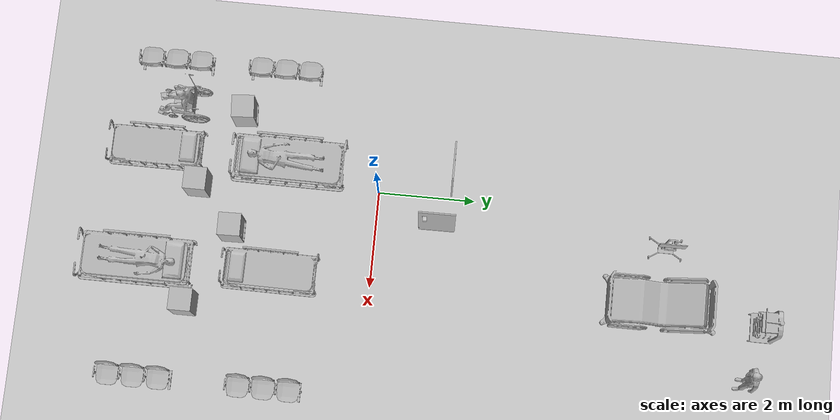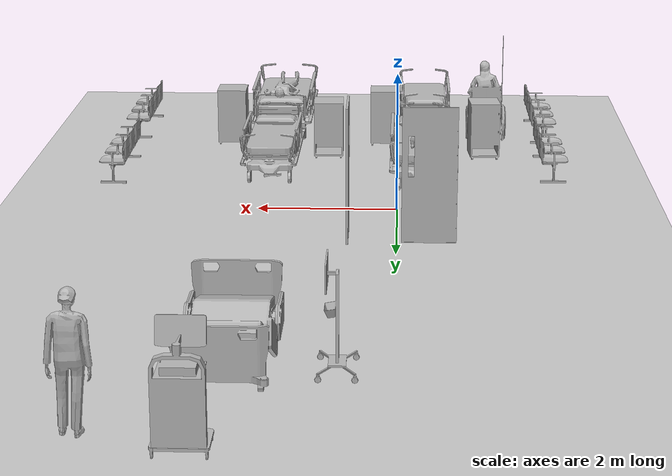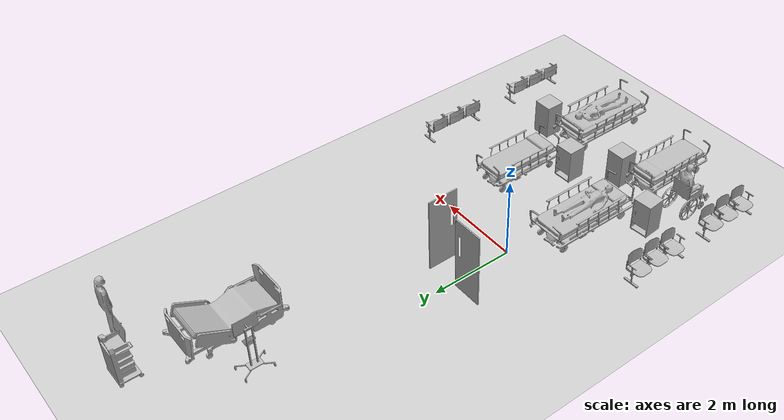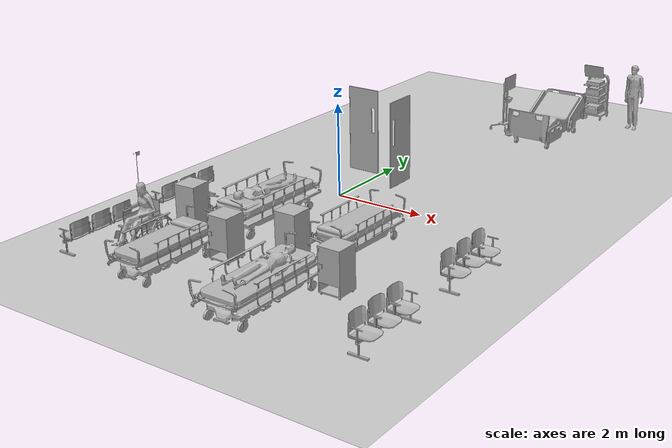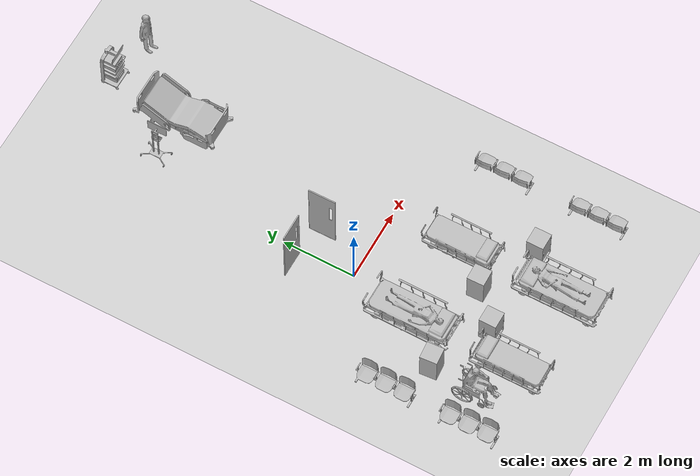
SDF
<sdf version="1.6">
 <world name="default">
  <model name="ground_plane">
   <static>1</static>
   <link name="link">
    <collision name="collision">
     <geometry><plane><normal>0 0 1</normal><size>100 100</size></plane></geometry>
     <surface><friction><ode><mu>100</mu><mu2>50</mu2></ode></friction></surface>
    </collision>
    <visual name="visual">
     <cast_shadows>0</cast_shadows>
     <geometry><plane><normal>0 0 1</normal><size>100 100</size></plane></geometry>
     <material>
      <script><uri>file://media/materials/scripts/gazebo.material</uri><name>Gazebo/Grey</name></script>
     </material>
    </visual>
   </link>
  </model>
  <model name="human_1_collision_model">
   <link name="link">
    <collision name="leg_1">
     <pose>-0.15 -0.5 0.2 1.57 0 0</pose>
     <geometry><cylinder><radius>0.08</radius><length>0.9</length></cylinder></geometry>
    </collision>
    <collision name="leg_2">
     <pose>0.15 -0.5 0.2 1.57 0 0</pose>
     <geometry><cylinder><radius>0.08</radius><length>0.9</length></cylinder></geometry>
    </collision>
   </link>
  </model>
  <model name="human_2_collision_model">
   <link name="link">
    <collision name="leg_1">
     <pose>-0.2 -0.5 0.2 1.57 0 0</pose>
     <geometry><cylinder><radius>0.06</radius><length>0.9</length></cylinder></geometry>
    </collision>
    <collision name="leg_2">
     <pose>0.2 -0.5 0.2 1.57 0 0</pose>
     <geometry><cylinder><radius>0.06</radius><length>0.9</length></cylinder></geometry>
    </collision>
   </link>
  </model>
  <model name="TrolleyBed">
   <static>1</static>
   <link name="link">
    <visual name="visual">
     <geometry><mesh><uri>model://TrolleyBed/meshes/TrolleyBed.obj</uri></mesh></geometry>
    </visual>
    <collision name="collision">
     <geometry><mesh><uri>model://TrolleyBed/meshes/TrolleyBed.dae</uri></mesh></geometry>
    </collision>
   </link>
   <pose>-0.444236 -4.64318 0 0 -0 0</pose>
  </model>
  <model name="TrolleyBedPatient">
   <static>1</static>
   <link name="body">
    <visual name="visual">
     <geometry><mesh><uri>model://TrolleyBedPatient/meshes/TrolleyBedPatient.obj</uri></mesh></geometry>
    </visual>
    <collision name="collision">
     <geometry><mesh><uri>model://TrolleyBedPatient/meshes/TrolleyBedPatient.dae</uri></mesh></geometry>
    </collision>
   </link>
   <pose>1.93294 -4.78281 0 0 -0 0</pose>
  </model>
  <model name="TrolleyBedPatient">
   <static>1</static>
   <link name="body">
    <visual name="visual">
     <geometry><mesh><uri>model://TrolleyBedPatient/meshes/TrolleyBedPatient.obj</uri></mesh></geometry>
    </visual>
    <collision name="collision">
     <geometry><mesh><uri>model://TrolleyBedPatient/meshes/TrolleyBedPatient.dae</uri></mesh></geometry>
    </collision>
   </link>
   <pose>1.93294 -4.78281 0 0 -0 0</pose>
  </model>
  <model name="TrolleyBed_clone">
   <static>1</static>
   <link name="link">
    <visual name="visual">
     <geometry><mesh><uri>model://TrolleyBed/meshes/TrolleyBed.obj</uri></mesh></geometry>
    </visual>
    <collision name="collision">
     <geometry><mesh><uri>model://TrolleyBed/meshes/TrolleyBed.dae</uri></mesh></geometry>
    </collision>
   </link>
   <pose>1.93229 -2.03632 0 0 -0 3.13376</pose>
  </model>
  <model name="TrolleyBedPatient_clone">
   <static>1</static>
   <link name="body">
    <visual name="visual">
     <geometry><mesh><uri>model://TrolleyBedPatient/meshes/TrolleyBedPatient.obj</uri></mesh></geometry>
    </visual>
    <collision name="collision">
     <geometry><mesh><uri>model://TrolleyBedPatient/meshes/TrolleyBedPatient.dae</uri></mesh></geometry>
    </collision>
   </link>
   <pose>-0.396336 -1.89969 0 0 -0 3.13703</pose>
  </model>
  <model name="PatientWheelChair">
   <static>1</static>
   <link name="body">
    <visual name="visual">
     <geometry><mesh><uri>model://PatientWheelChair/meshes/PatientWheelChair.obj</uri></mesh></geometry>
    </visual>
    <collision name="collision">
     <geometry><mesh><uri>model://PatientWheelChair/meshes/PatientWheelChair_Col.dae</uri></mesh></geometry>
    </collision>
   </link>
   <pose>-1.44838 -4.23035 0 0 -0 0</pose>
  </model>
  <model name="BedsideTable2">
   <static>1</static>
   <link name="body">
    <visual name="visual">
     <geometry><mesh><uri>model://BedsideTable2/meshes/BedsideTable2.obj</uri></mesh></geometry>
    </visual>
    <collision name="collision">
     <geometry><mesh><uri>model://BedsideTable2/meshes/BedsideTable2.dae</uri></mesh></geometry>
    </collision>
   </link>
   <pose>0.216834 -3.73176 0 0 -0 0</pose>
  </model>
  <model name="BedsideTable2_0">
   <static>1</static>
   <link name="body">
    <visual name="visual">
     <geometry><mesh><uri>model://BedsideTable2/meshes/BedsideTable2.obj</uri></mesh></geometry>
    </visual>
    <collision name="collision">
     <geometry><mesh><uri>model://BedsideTable2/meshes/BedsideTable2.dae</uri></mesh></geometry>
    </collision>
   </link>
   <pose>2.71652 -3.72637 0 0 -0 0</pose>
  </model>
  <model name="BedsideTable2_0_clone">
   <static>1</static>
   <link name="body">
    <visual name="visual">
     <geometry><mesh><uri>model://BedsideTable2/meshes/BedsideTable2.obj</uri></mesh></geometry>
    </visual>
    <collision name="collision">
     <geometry><mesh><uri>model://BedsideTable2/meshes/BedsideTable2.dae</uri></mesh></geometry>
    </collision>
   </link>
   <pose>1.10263 -2.92028 0 0 0 -3.12073</pose>
  </model>
  <model name="BedsideTable2_0_clone_0">
   <static>1</static>
   <link name="body">
    <visual name="visual">
     <geometry><mesh><uri>model://BedsideTable2/meshes/BedsideTable2.obj</uri></mesh></geometry>
    </visual>
    <collision name="collision">
     <geometry><mesh><uri>model://BedsideTable2/meshes/BedsideTable2.dae</uri></mesh></geometry>
    </collision>
   </link>
   <pose>-1.37142 -2.9306 0 0 0 -3.06514</pose>
  </model>
  <model name="OrangeDoors">
   <static>1</static>
   <link name="body">
    <visual name="visual">
     <geometry><mesh><uri>model://OrangeDoors/meshes/door.obj</uri></mesh></geometry>
    </visual>
    <collision name="collision">
     <geometry><mesh><uri>model://OrangeDoors/meshes/door.dae</uri></mesh></geometry>
    </collision>
   </link>
   <pose>-0.4403 1.51248 0 0 -0 0</pose>
  </model>
  <model name="OrangeDoors_1_clone">
   <static>1</static>
   <link name="body">
    <visual name="visual">
     <geometry><mesh><uri>model://OrangeDoors/meshes/door.obj</uri></mesh></geometry>
    </visual>
    <collision name="collision">
     <geometry><mesh><uri>model://OrangeDoors/meshes/door.dae</uri></mesh></geometry>
    </collision>
   </link>
   <pose>0.67035 1.26972 0 0 0 -1.5647</pose>
  </model>
  <model name="CGMClassic_0">
   <static>1</static>
   <link name="body">
    <visual name="visual">
     <geometry>
      <mesh><uri>model://CGMClassic/meshes/CGMClassic.obj</uri><scale>0.01 0.01 0.01</scale></mesh>
     </geometry>
    </visual>
    <collision name="collision">
     <geometry>
      <mesh><uri>model://CGMClassic/meshes/CGMClassic.dae</uri><scale>0.01 0.01 0.01</scale></mesh>
     </geometry>
    </collision>
   </link>
   <pose>1.83212 5.99388 0 0 -0 0</pose>
  </model>
  <model name="OpScrubs_1">
   <static>1</static>
   <link name="body">
    <visual name="visual">
     <geometry><mesh><uri>model://OpScrubs/meshes/OpScrubs.obj</uri></mesh></geometry>
    </visual>
    <collision name="collision">
     <geometry><mesh><uri>model://OpScrubs/meshes/OpScrubs_Col.dae</uri></mesh></geometry>
    </collision>
   </link>
   <pose>3.26906 7.76404 0 0 -0 0</pose>
  </model>
  <model name="InstrumentCart1_0">
   <static>1</static>
   <link name="body">
    <visual name="visual">
     <geometry><mesh><uri>model://InstrumentCart1/meshes/InstrumentCart1.obj</uri></mesh></geometry>
    </visual>
    <collision name="collision">
     <geometry><mesh><uri>model://InstrumentCart1/meshes/InstrumentCart1.dae</uri></mesh></geometry>
    </collision>
   </link>
   <pose>2.09337 8.11524 0 0 -0 0</pose>
  </model>
  <model name="InstrumentCart2_clone">
   <static>1</static>
   <link name="body">
    <visual name="visual">
     <geometry><mesh><uri>model://InstrumentCart2/meshes/InstrumentCart2.obj</uri></mesh></geometry>
    </visual>
    <collision name="collision">
     <geometry><mesh><uri>model://InstrumentCart2/meshes/InstrumentCart2.dae</uri></mesh></geometry>
    </collision>
   </link>
   <pose>0.693971 6.03645 0 0 -0 1.57265</pose>
  </model>
  <model name="WhiteChipChair">
   <static>1</static>
   <link name="link">
    <visual name="visual">
     <geometry><mesh><uri>model://WhiteChipChair/meshes/WhiteChipChair.obj</uri></mesh></geometry>
    </visual>
    <collision name="collision">
     <geometry><mesh><uri>model://WhiteChipChair/meshes/WhiteChipChair.dae</uri></mesh></geometry>
    </collision>
   </link>
   <pose>4.06038 -4.58467 0 0 -0 0</pose>
  </model>
  <model name="WhiteChipChair_0">
   <static>1</static>
   <link name="link">
    <visual name="visual">
     <geometry><mesh><uri>model://WhiteChipChair/meshes/WhiteChipChair.obj</uri></mesh></geometry>
    </visual>
    <collision name="collision">
     <geometry><mesh><uri>model://WhiteChipChair/meshes/WhiteChipChair.dae</uri></mesh></geometry>
    </collision>
   </link>
   <pose>4.06413 -1.92172 0 0 -0 0</pose>
  </model>
  <model name="WhiteChipChair_clone">
   <static>1</static>
   <link name="link">
    <visual name="visual">
     <geometry><mesh><uri>model://WhiteChipChair/meshes/WhiteChipChair.obj</uri></mesh></geometry>
    </visual>
    <collision name="collision">
     <geometry><mesh><uri>model://WhiteChipChair/meshes/WhiteChipChair.dae</uri></mesh></geometry>
    </collision>
   </link>
   <pose>-2.13604 -4.50176 0 0 0 -3.13724</pose>
  </model>
  <model name="WhiteChipChair_clone_clone">
   <static>1</static>
   <link name="link">
    <visual name="visual">
     <geometry><mesh><uri>model://WhiteChipChair/meshes/WhiteChipChair.obj</uri></mesh></geometry>
    </visual>
    <collision name="collision">
     <geometry><mesh><uri>model://WhiteChipChair/meshes/WhiteChipChair.dae</uri></mesh></geometry>
    </collision>
   </link>
   <pose>-2.1275 -2.19188 0 0 0 -3.13724</pose>
  </model>
 </world>
</sdf>
